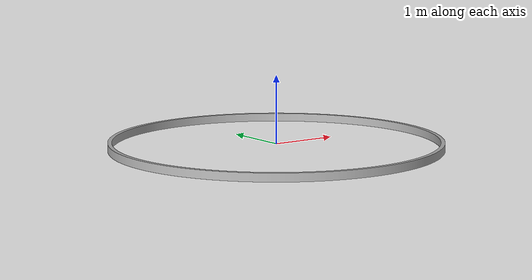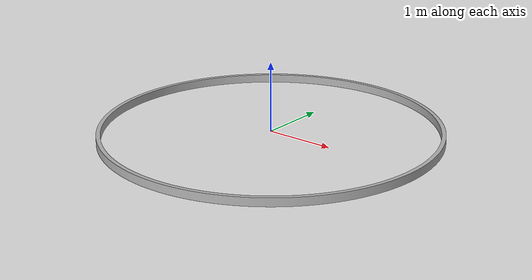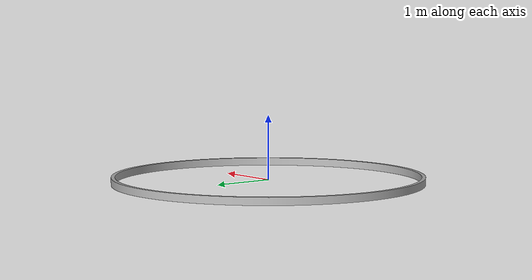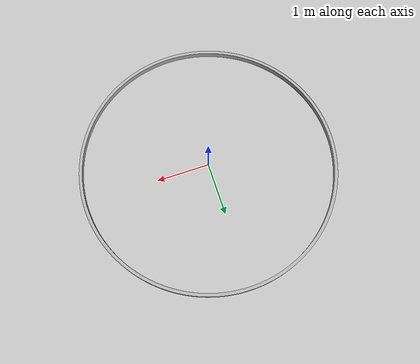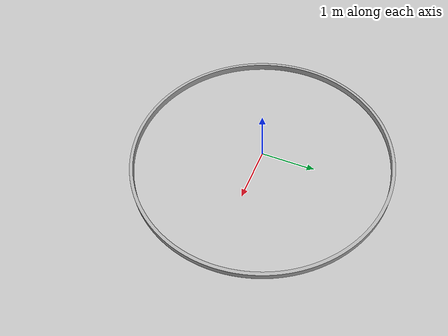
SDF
<?xml version="1.0" ?>
<sdf version="1.7">
  <model name="guard_rail_inner">
    <static>true</static>
    <link name="guard_rail_link">
      <collision name="collision">
        <geometry>
          <mesh>
            <uri>model://guard_rail_inner/meshes/guard_rail_inner.obj</uri>
          </mesh>
        </geometry>
      </collision>
      <visual name="visual">
        <geometry>
          <mesh>
            <uri>model://guard_rail_inner/meshes/guard_rail_inner.obj</uri>
          </mesh>
        </geometry>
        <material>
          <ambient>0.7 0.7 0.7 1</ambient>
          <diffuse>0.7 0.7 0.7 1</diffuse>
        </material>
      </visual>
    </link>
  </model>
</sdf>
